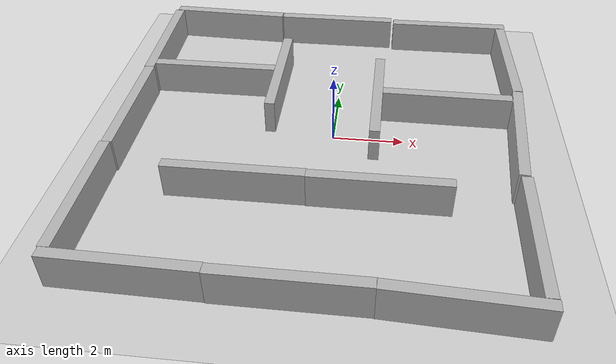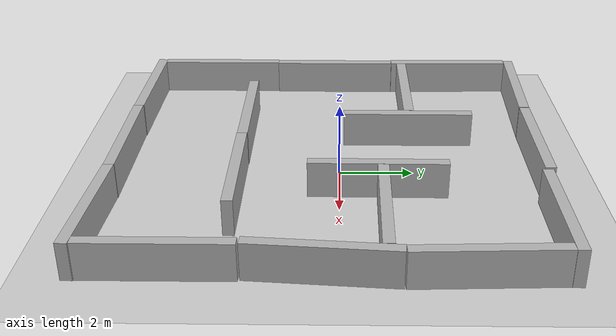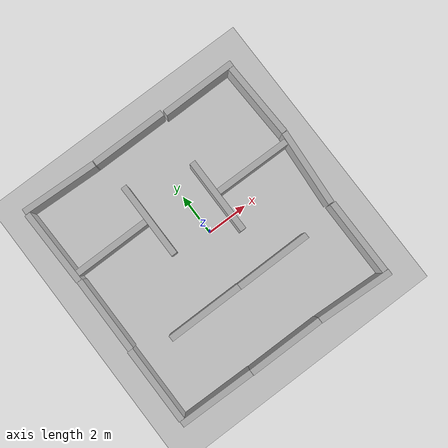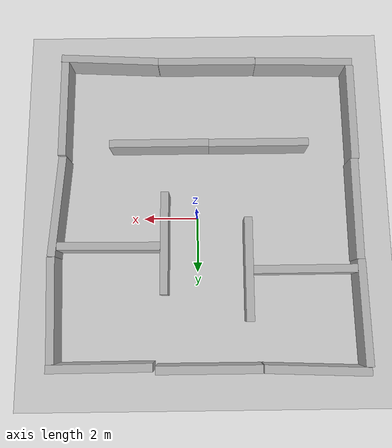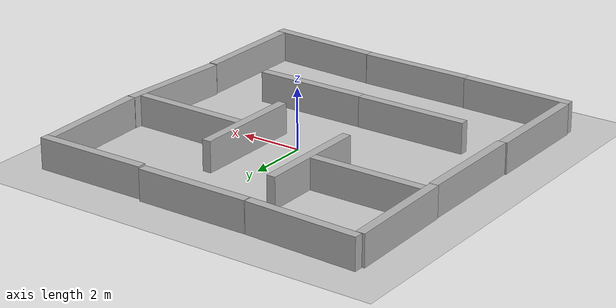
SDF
<sdf version="1.9">
 <world name="default">
  <plugin name="gz::sim::systems::Physics" filename="gz-sim-physics-system"/>
  <plugin name="gz::sim::systems::UserCommands" filename="gz-sim-user-commands-system"/>
  <plugin name="gz::sim::systems::SceneBroadcaster" filename="gz-sim-scene-broadcaster-system"/>
  <plugin name="gz::sim::systems::Sensors" filename="gz-sim-sensors-system"/>
  <scene>
   <ambient>0.8 0.8 0.8 1</ambient>
   <background>0.95 0.95 0.95 1</background>
   <shadows>false</shadows>
  </scene>
  <gravity>0 0 -9.8</gravity>
  <magnetic_field>6e-06 2.3e-05 -4.2e-05</magnetic_field>
  <atmosphere type="adiabatic"/>
  <physics type="ode">
   <max_step_size>0.001</max_step_size>
   <real_time_factor>1</real_time_factor>
   <real_time_update_rate>1000</real_time_update_rate>
  </physics>
  <scene><ambient>0.4 0.4 0.4 1</ambient><background>0.7 0.7 0.7 1</background><shadows>true</shadows></scene>
  <audio><device>default</device></audio>
  <spherical_coordinates>
   <surface_model>EARTH_WGS84</surface_model>
   <latitude_deg>0</latitude_deg>
   <longitude_deg>0</longitude_deg>
   <elevation>0</elevation>
   <heading_deg>0</heading_deg>
  </spherical_coordinates>
  <model name="ground_plane">
   <static>true</static>
   <link name="link">
    <collision name="collision">
     <geometry><plane><normal>0 0 1</normal><size>100 100</size></plane></geometry>
     <surface><friction><ode><mu>100</mu><mu2>50</mu2></ode></friction></surface>
    </collision>
    <visual name="visual">
     <cast_shadows>false</cast_shadows>
     <geometry><plane><normal>0 0 1</normal><size>100 100</size></plane></geometry>
     <material>
      <script><uri>file://media/materials/scripts/gazebo.material</uri><name>Gazebo/Grey</name></script>
     </material>
    </visual>
    <inertial>
     <mass>1</mass>
     <inertia><ixx>1</ixx><ixy>0</ixy><ixz>0</ixz><iyy>1</iyy><iyz>0</iyz><izz>1</izz></inertia>
    </inertial>
   </link>
  </model>
  <model name="boxes">
   <link name="link_0">
    <inertial>
     <mass>1.0809800000000001</mass>
     <inertia>
      <ixx>1.32921</ixx>
      <ixy>0</ixy>
      <ixz>0</ixz>
      <iyy>0.097733700000000007</iyy>
      <iyz>0</iyz>
      <izz>1.24678</izz>
     </inertia>
    </inertial>
    <pose>-3e-06 2e-06 0 0 -0 0</pose>
    <visual name="visual">
     <geometry><box><size>0.29145 3.70885 1</size></box></geometry>
     <material>
      <ambient>0.7 0.7 0.7 1</ambient>
      <diffuse>0.7 0.7 0.7 1</diffuse>
      <specular>0.05 0.05 0.05 1</specular>
     </material>
    </visual>
    <collision name="collision">
     <geometry><box><size>0.29145 3.70885 1</size></box></geometry>
     <surface>
      <friction>
       <ode><mu>1</mu><mu2>1</mu2><fdir1>0 0 0</fdir1><slip1>0</slip1><slip2>0</slip2></ode>
       <torsional>
        <coefficient>1</coefficient>
        <patch_radius>0</patch_radius>
        <surface_radius>0</surface_radius>
        <use_patch_radius>true</use_patch_radius>
        <ode><slip>0</slip></ode>
       </torsional>
      </friction>
      <bounce><restitution_coefficient>0</restitution_coefficient><threshold>1000000</threshold></bounce>
      <contact>
       <collide_without_contact>false</collide_without_contact>
       <collide_without_contact_bitmask>1</collide_without_contact_bitmask>
       <collide_bitmask>1</collide_bitmask>
       <ode>
        <soft_cfm>0</soft_cfm>
        <soft_erp>0.20000000000000001</soft_erp>
        <kp>10000000000000</kp>
        <kd>1</kd>
        <max_vel>0.01</max_vel>
        <min_depth>0</min_depth>
       </ode>
       <bullet>
        <split_impulse>true</split_impulse>
        <split_impulse_penetration_threshold>-0.01</split_impulse_penetration_threshold>
        <soft_cfm>0</soft_cfm>
        <soft_erp>0.20000000000000001</soft_erp>
        <kp>10000000000000</kp>
        <kd>1</kd>
       </bullet>
      </contact>
     </surface>
    </collision>
   </link>
   <static>false</static>
   <pose>-5.8693 -3.88223 0.5 0 0 -0.000817</pose>
  </model>
  <model name="boxes_clone">
   <link name="link_0">
    <inertial>
     <mass>1.0809800000000001</mass>
     <inertia>
      <ixx>1.32921</ixx>
      <ixy>0</ixy>
      <ixz>0</ixz>
      <iyy>0.097733700000000007</iyy>
      <iyz>0</iyz>
      <izz>1.24678</izz>
     </inertia>
    </inertial>
    <pose>-3e-06 2e-06 0 0 -0 0</pose>
    <visual name="visual">
     <geometry><box><size>0.29145 3.70885 1</size></box></geometry>
     <material>
      <ambient>0.7 0.7 0.7 1</ambient>
      <diffuse>0.7 0.7 0.7 1</diffuse>
      <specular>0.05 0.05 0.05 1</specular>
     </material>
    </visual>
    <collision name="collision">
     <geometry><box><size>0.29145 3.70885 1</size></box></geometry>
     <surface>
      <friction>
       <ode><mu>1</mu><mu2>1</mu2><fdir1>0 0 0</fdir1><slip1>0</slip1><slip2>0</slip2></ode>
       <torsional>
        <coefficient>1</coefficient>
        <patch_radius>0</patch_radius>
        <surface_radius>0</surface_radius>
        <use_patch_radius>true</use_patch_radius>
        <ode><slip>0</slip></ode>
       </torsional>
      </friction>
      <bounce><restitution_coefficient>0</restitution_coefficient><threshold>1000000</threshold></bounce>
      <contact>
       <collide_without_contact>false</collide_without_contact>
       <collide_without_contact_bitmask>1</collide_without_contact_bitmask>
       <collide_bitmask>1</collide_bitmask>
       <ode>
        <soft_cfm>0</soft_cfm>
        <soft_erp>0.20000000000000001</soft_erp>
        <kp>10000000000000</kp>
        <kd>1</kd>
        <max_vel>0.01</max_vel>
        <min_depth>0</min_depth>
       </ode>
       <bullet>
        <split_impulse>true</split_impulse>
        <split_impulse_penetration_threshold>-0.01</split_impulse_penetration_threshold>
        <soft_cfm>0</soft_cfm>
        <soft_erp>0.20000000000000001</soft_erp>
        <kp>10000000000000</kp>
        <kd>1</kd>
       </bullet>
      </contact>
     </surface>
    </collision>
   </link>
   <static>false</static>
   <pose>-5.82231 -0.173391 0.499995 -3e-06 -0 -0.000754</pose>
  </model>
  <model name="boxes_clone_clone">
   <link name="link_0">
    <inertial>
     <mass>1.0809800000000001</mass>
     <inertia>
      <ixx>1.32921</ixx>
      <ixy>0</ixy>
      <ixz>0</ixz>
      <iyy>0.097733700000000007</iyy>
      <iyz>0</iyz>
      <izz>1.24678</izz>
     </inertia>
    </inertial>
    <pose>-3e-06 2e-06 0 0 -0 0</pose>
    <visual name="visual">
     <geometry><box><size>0.29145 3.70885 1</size></box></geometry>
     <material>
      <ambient>0.7 0.7 0.7 1</ambient>
      <diffuse>0.7 0.7 0.7 1</diffuse>
      <specular>0.05 0.05 0.05 1</specular>
     </material>
    </visual>
    <collision name="collision">
     <geometry><box><size>0.29145 3.70885 1</size></box></geometry>
     <surface>
      <friction>
       <ode><mu>1</mu><mu2>1</mu2><fdir1>0 0 0</fdir1><slip1>0</slip1><slip2>0</slip2></ode>
       <torsional>
        <coefficient>1</coefficient>
        <patch_radius>0</patch_radius>
        <surface_radius>0</surface_radius>
        <use_patch_radius>true</use_patch_radius>
        <ode><slip>0</slip></ode>
       </torsional>
      </friction>
      <bounce><restitution_coefficient>0</restitution_coefficient><threshold>1000000</threshold></bounce>
      <contact>
       <collide_without_contact>false</collide_without_contact>
       <collide_without_contact_bitmask>1</collide_without_contact_bitmask>
       <collide_bitmask>1</collide_bitmask>
       <ode>
        <soft_cfm>0</soft_cfm>
        <soft_erp>0.20000000000000001</soft_erp>
        <kp>10000000000000</kp>
        <kd>1</kd>
        <max_vel>0.01</max_vel>
        <min_depth>0</min_depth>
       </ode>
       <bullet>
        <split_impulse>true</split_impulse>
        <split_impulse_penetration_threshold>-0.01</split_impulse_penetration_threshold>
        <soft_cfm>0</soft_cfm>
        <soft_erp>0.20000000000000001</soft_erp>
        <kp>10000000000000</kp>
        <kd>1</kd>
       </bullet>
      </contact>
     </surface>
    </collision>
   </link>
   <static>false</static>
   <pose>-5.87255 3.53939 0.499995 -3e-06 -0 0.016364</pose>
  </model>
  <model name="boxes_clone_0">
   <link name="link_0">
    <inertial>
     <mass>1.0809800000000001</mass>
     <inertia>
      <ixx>1.32921</ixx>
      <ixy>0</ixy>
      <ixz>0</ixz>
      <iyy>0.097733700000000007</iyy>
      <iyz>0</iyz>
      <izz>1.24678</izz>
     </inertia>
    </inertial>
    <pose>-3e-06 2e-06 0 0 -0 0</pose>
    <visual name="visual">
     <geometry><box><size>0.29145 3.70885 1</size></box></geometry>
     <material>
      <ambient>0.7 0.7 0.7 1</ambient>
      <diffuse>0.7 0.7 0.7 1</diffuse>
      <specular>0.05 0.05 0.05 1</specular>
     </material>
    </visual>
    <collision name="collision">
     <geometry><box><size>0.29145 3.70885 1</size></box></geometry>
     <surface>
      <friction>
       <ode><mu>1</mu><mu2>1</mu2><fdir1>0 0 0</fdir1><slip1>0</slip1><slip2>0</slip2></ode>
       <torsional>
        <coefficient>1</coefficient>
        <patch_radius>0</patch_radius>
        <surface_radius>0</surface_radius>
        <use_patch_radius>true</use_patch_radius>
        <ode><slip>0</slip></ode>
       </torsional>
      </friction>
      <bounce><restitution_coefficient>0</restitution_coefficient><threshold>1000000</threshold></bounce>
      <contact>
       <collide_without_contact>false</collide_without_contact>
       <collide_without_contact_bitmask>1</collide_without_contact_bitmask>
       <collide_bitmask>1</collide_bitmask>
       <ode>
        <soft_cfm>0</soft_cfm>
        <soft_erp>0.20000000000000001</soft_erp>
        <kp>10000000000000</kp>
        <kd>1</kd>
        <max_vel>0.01</max_vel>
        <min_depth>0</min_depth>
       </ode>
       <bullet>
        <split_impulse>true</split_impulse>
        <split_impulse_penetration_threshold>-0.01</split_impulse_penetration_threshold>
        <soft_cfm>0</soft_cfm>
        <soft_erp>0.20000000000000001</soft_erp>
        <kp>10000000000000</kp>
        <kd>1</kd>
       </bullet>
      </contact>
     </surface>
    </collision>
   </link>
   <static>false</static>
   <pose>4.9946 -4.13535 0.5 0 -0 -0.001346</pose>
  </model>
  <model name="boxes_clone_1">
   <link name="link_0">
    <inertial>
     <mass>1.0809800000000001</mass>
     <inertia>
      <ixx>1.32921</ixx>
      <ixy>0</ixy>
      <ixz>0</ixz>
      <iyy>0.097733700000000007</iyy>
      <iyz>0</iyz>
      <izz>1.24678</izz>
     </inertia>
    </inertial>
    <pose>-3e-06 2e-06 0 0 -0 0</pose>
    <visual name="visual">
     <geometry><box><size>0.29145 3.70885 1</size></box></geometry>
     <material>
      <ambient>0.7 0.7 0.7 1</ambient>
      <diffuse>0.7 0.7 0.7 1</diffuse>
      <specular>0.05 0.05 0.05 1</specular>
     </material>
    </visual>
    <collision name="collision">
     <geometry><box><size>0.29145 3.70885 1</size></box></geometry>
     <surface>
      <friction>
       <ode><mu>1</mu><mu2>1</mu2><fdir1>0 0 0</fdir1><slip1>0</slip1><slip2>0</slip2></ode>
       <torsional>
        <coefficient>1</coefficient>
        <patch_radius>0</patch_radius>
        <surface_radius>0</surface_radius>
        <use_patch_radius>true</use_patch_radius>
        <ode><slip>0</slip></ode>
       </torsional>
      </friction>
      <bounce><restitution_coefficient>0</restitution_coefficient><threshold>1000000</threshold></bounce>
      <contact>
       <collide_without_contact>false</collide_without_contact>
       <collide_without_contact_bitmask>1</collide_without_contact_bitmask>
       <collide_bitmask>1</collide_bitmask>
       <ode>
        <soft_cfm>0</soft_cfm>
        <soft_erp>0.20000000000000001</soft_erp>
        <kp>10000000000000</kp>
        <kd>1</kd>
        <max_vel>0.01</max_vel>
        <min_depth>0</min_depth>
       </ode>
       <bullet>
        <split_impulse>true</split_impulse>
        <split_impulse_penetration_threshold>-0.01</split_impulse_penetration_threshold>
        <soft_cfm>0</soft_cfm>
        <soft_erp>0.20000000000000001</soft_erp>
        <kp>10000000000000</kp>
        <kd>1</kd>
       </bullet>
      </contact>
     </surface>
    </collision>
   </link>
   <static>false</static>
   <pose>5.09165 -0.382169 0.5 0 -3e-06 -0.075842</pose>
  </model>
  <model name="boxes_clone_2">
   <link name="link_0">
    <inertial>
     <mass>1.0809800000000001</mass>
     <inertia>
      <ixx>1.32921</ixx>
      <ixy>0</ixy>
      <ixz>0</ixz>
      <iyy>0.097733700000000007</iyy>
      <iyz>0</iyz>
      <izz>1.24678</izz>
     </inertia>
    </inertial>
    <pose>-3e-06 2e-06 0 0 -0 0</pose>
    <visual name="visual">
     <geometry><box><size>0.29145 3.70885 1</size></box></geometry>
     <material>
      <ambient>0.7 0.7 0.7 1</ambient>
      <diffuse>0.7 0.7 0.7 1</diffuse>
      <specular>0.05 0.05 0.05 1</specular>
     </material>
    </visual>
    <collision name="collision">
     <geometry><box><size>0.29145 3.70885 1</size></box></geometry>
     <surface>
      <friction>
       <ode><mu>1</mu><mu2>1</mu2><fdir1>0 0 0</fdir1><slip1>0</slip1><slip2>0</slip2></ode>
       <torsional>
        <coefficient>1</coefficient>
        <patch_radius>0</patch_radius>
        <surface_radius>0</surface_radius>
        <use_patch_radius>true</use_patch_radius>
        <ode><slip>0</slip></ode>
       </torsional>
      </friction>
      <bounce><restitution_coefficient>0</restitution_coefficient><threshold>1000000</threshold></bounce>
      <contact>
       <collide_without_contact>false</collide_without_contact>
       <collide_without_contact_bitmask>1</collide_without_contact_bitmask>
       <collide_bitmask>1</collide_bitmask>
       <ode>
        <soft_cfm>0</soft_cfm>
        <soft_erp>0.20000000000000001</soft_erp>
        <kp>10000000000000</kp>
        <kd>1</kd>
        <max_vel>0.01</max_vel>
        <min_depth>0</min_depth>
       </ode>
       <bullet>
        <split_impulse>true</split_impulse>
        <split_impulse_penetration_threshold>-0.01</split_impulse_penetration_threshold>
        <soft_cfm>0</soft_cfm>
        <soft_erp>0.20000000000000001</soft_erp>
        <kp>10000000000000</kp>
        <kd>1</kd>
       </bullet>
      </contact>
     </surface>
    </collision>
   </link>
   <static>false</static>
   <pose>5.17715 3.33561 0.500001 -0 -8e-06 0.035442</pose>
  </model>
  <model name="boxes_clone_3">
   <link name="link_0">
    <inertial>
     <mass>1.0809800000000001</mass>
     <inertia>
      <ixx>1.32921</ixx>
      <ixy>0</ixy>
      <ixz>0</ixz>
      <iyy>0.097733700000000007</iyy>
      <iyz>0</iyz>
      <izz>1.24678</izz>
     </inertia>
    </inertial>
    <pose>-3e-06 2e-06 0 0 -0 0</pose>
    <visual name="visual">
     <geometry><box><size>0.29145 3.70885 1</size></box></geometry>
     <material>
      <ambient>0.7 0.7 0.7 1</ambient>
      <diffuse>0.7 0.7 0.7 1</diffuse>
      <specular>0.05 0.05 0.05 1</specular>
     </material>
    </visual>
    <collision name="collision">
     <geometry><box><size>0.29145 3.70885 1</size></box></geometry>
     <surface>
      <friction>
       <ode><mu>1</mu><mu2>1</mu2><fdir1>0 0 0</fdir1><slip1>0</slip1><slip2>0</slip2></ode>
       <torsional>
        <coefficient>1</coefficient>
        <patch_radius>0</patch_radius>
        <surface_radius>0</surface_radius>
        <use_patch_radius>true</use_patch_radius>
        <ode><slip>0</slip></ode>
       </torsional>
      </friction>
      <bounce><restitution_coefficient>0</restitution_coefficient><threshold>1000000</threshold></bounce>
      <contact>
       <collide_without_contact>false</collide_without_contact>
       <collide_without_contact_bitmask>1</collide_without_contact_bitmask>
       <collide_bitmask>1</collide_bitmask>
       <ode>
        <soft_cfm>0</soft_cfm>
        <soft_erp>0.20000000000000001</soft_erp>
        <kp>10000000000000</kp>
        <kd>1</kd>
        <max_vel>0.01</max_vel>
        <min_depth>0</min_depth>
       </ode>
       <bullet>
        <split_impulse>true</split_impulse>
        <split_impulse_penetration_threshold>-0.01</split_impulse_penetration_threshold>
        <soft_cfm>0</soft_cfm>
        <soft_erp>0.20000000000000001</soft_erp>
        <kp>10000000000000</kp>
        <kd>1</kd>
       </bullet>
      </contact>
     </surface>
    </collision>
   </link>
   <static>false</static>
   <pose>-4.12795 -5.91134 0.500001 -0 4e-06 -1.58646</pose>
  </model>
  <model name="boxes_clone_3_clone">
   <link name="link_0">
    <inertial>
     <mass>1.0809800000000001</mass>
     <inertia>
      <ixx>1.32921</ixx>
      <ixy>0</ixy>
      <ixz>0</ixz>
      <iyy>0.097733700000000007</iyy>
      <iyz>0</iyz>
      <izz>1.24678</izz>
     </inertia>
    </inertial>
    <pose>-3e-06 2e-06 0 0 -0 0</pose>
    <visual name="visual">
     <geometry><box><size>0.29145 3.70885 1</size></box></geometry>
     <material>
      <ambient>0.7 0.7 0.7 1</ambient>
      <diffuse>0.7 0.7 0.7 1</diffuse>
      <specular>0.05 0.05 0.05 1</specular>
     </material>
    </visual>
    <collision name="collision">
     <geometry><box><size>0.29145 3.70885 1</size></box></geometry>
     <surface>
      <friction>
       <ode><mu>1</mu><mu2>1</mu2><fdir1>0 0 0</fdir1><slip1>0</slip1><slip2>0</slip2></ode>
       <torsional>
        <coefficient>1</coefficient>
        <patch_radius>0</patch_radius>
        <surface_radius>0</surface_radius>
        <use_patch_radius>true</use_patch_radius>
        <ode><slip>0</slip></ode>
       </torsional>
      </friction>
      <bounce><restitution_coefficient>0</restitution_coefficient><threshold>1000000</threshold></bounce>
      <contact>
       <collide_without_contact>false</collide_without_contact>
       <collide_without_contact_bitmask>1</collide_without_contact_bitmask>
       <collide_bitmask>1</collide_bitmask>
       <ode>
        <soft_cfm>0</soft_cfm>
        <soft_erp>0.20000000000000001</soft_erp>
        <kp>10000000000000</kp>
        <kd>1</kd>
        <max_vel>0.01</max_vel>
        <min_depth>0</min_depth>
       </ode>
       <bullet>
        <split_impulse>true</split_impulse>
        <split_impulse_penetration_threshold>-0.01</split_impulse_penetration_threshold>
        <soft_cfm>0</soft_cfm>
        <soft_erp>0.20000000000000001</soft_erp>
        <kp>10000000000000</kp>
        <kd>1</kd>
       </bullet>
      </contact>
     </surface>
    </collision>
   </link>
   <static>false</static>
   <pose>-0.417646 -5.96041 0.499998 -1e-06 2e-06 -1.57333</pose>
  </model>
  <model name="boxes_clone_3_clone_clone">
   <link name="link_0">
    <inertial>
     <mass>1.0809800000000001</mass>
     <inertia>
      <ixx>1.32921</ixx>
      <ixy>0</ixy>
      <ixz>0</ixz>
      <iyy>0.097733700000000007</iyy>
      <iyz>0</iyz>
      <izz>1.24678</izz>
     </inertia>
    </inertial>
    <pose>-3e-06 2e-06 0 0 -0 0</pose>
    <visual name="visual">
     <geometry><box><size>0.29145 3.70885 1</size></box></geometry>
     <material>
      <ambient>0.7 0.7 0.7 1</ambient>
      <diffuse>0.7 0.7 0.7 1</diffuse>
      <specular>0.05 0.05 0.05 1</specular>
     </material>
    </visual>
    <collision name="collision">
     <geometry><box><size>0.29145 3.70885 1</size></box></geometry>
     <surface>
      <friction>
       <ode><mu>1</mu><mu2>1</mu2><fdir1>0 0 0</fdir1><slip1>0</slip1><slip2>0</slip2></ode>
       <torsional>
        <coefficient>1</coefficient>
        <patch_radius>0</patch_radius>
        <surface_radius>0</surface_radius>
        <use_patch_radius>true</use_patch_radius>
        <ode><slip>0</slip></ode>
       </torsional>
      </friction>
      <bounce><restitution_coefficient>0</restitution_coefficient><threshold>1000000</threshold></bounce>
      <contact>
       <collide_without_contact>false</collide_without_contact>
       <collide_without_contact_bitmask>1</collide_without_contact_bitmask>
       <collide_bitmask>1</collide_bitmask>
       <ode>
        <soft_cfm>0</soft_cfm>
        <soft_erp>0.20000000000000001</soft_erp>
        <kp>10000000000000</kp>
        <kd>1</kd>
        <max_vel>0.01</max_vel>
        <min_depth>0</min_depth>
       </ode>
       <bullet>
        <split_impulse>true</split_impulse>
        <split_impulse_penetration_threshold>-0.01</split_impulse_penetration_threshold>
        <soft_cfm>0</soft_cfm>
        <soft_erp>0.20000000000000001</soft_erp>
        <kp>10000000000000</kp>
        <kd>1</kd>
       </bullet>
      </contact>
     </surface>
    </collision>
   </link>
   <static>false</static>
   <pose>3.29649 -6.06215 0.499998 -1e-06 -2e-06 -1.61892</pose>
  </model>
  <model name="boxes_clone_3_clone_0">
   <link name="link_0">
    <inertial>
     <mass>1.0809800000000001</mass>
     <inertia>
      <ixx>1.32921</ixx>
      <ixy>0</ixy>
      <ixz>0</ixz>
      <iyy>0.097733700000000007</iyy>
      <iyz>0</iyz>
      <izz>1.24678</izz>
     </inertia>
    </inertial>
    <pose>-3e-06 2e-06 0 0 -0 0</pose>
    <visual name="visual">
     <geometry><box><size>0.29145 3.70885 1</size></box></geometry>
     <material>
      <ambient>0.7 0.7 0.7 1</ambient>
      <diffuse>0.7 0.7 0.7 1</diffuse>
      <specular>0.05 0.05 0.05 1</specular>
     </material>
    </visual>
    <collision name="collision">
     <geometry><box><size>0.29145 3.70885 1</size></box></geometry>
     <surface>
      <friction>
       <ode><mu>1</mu><mu2>1</mu2><fdir1>0 0 0</fdir1><slip1>0</slip1><slip2>0</slip2></ode>
       <torsional>
        <coefficient>1</coefficient>
        <patch_radius>0</patch_radius>
        <surface_radius>0</surface_radius>
        <use_patch_radius>true</use_patch_radius>
        <ode><slip>0</slip></ode>
       </torsional>
      </friction>
      <bounce><restitution_coefficient>0</restitution_coefficient><threshold>1000000</threshold></bounce>
      <contact>
       <collide_without_contact>false</collide_without_contact>
       <collide_without_contact_bitmask>1</collide_without_contact_bitmask>
       <collide_bitmask>1</collide_bitmask>
       <ode>
        <soft_cfm>0</soft_cfm>
        <soft_erp>0.20000000000000001</soft_erp>
        <kp>10000000000000</kp>
        <kd>1</kd>
        <max_vel>0.01</max_vel>
        <min_depth>0</min_depth>
       </ode>
       <bullet>
        <split_impulse>true</split_impulse>
        <split_impulse_penetration_threshold>-0.01</split_impulse_penetration_threshold>
        <soft_cfm>0</soft_cfm>
        <soft_erp>0.20000000000000001</soft_erp>
        <kp>10000000000000</kp>
        <kd>1</kd>
       </bullet>
      </contact>
     </surface>
    </collision>
   </link>
   <static>false</static>
   <pose>-4.11342 5.4868 0.499998 1e-06 2e-06 -1.60723</pose>
  </model>
  <model name="boxes_clone_3_clone_0_clone">
   <link name="link_0">
    <inertial>
     <mass>1.0809800000000001</mass>
     <inertia>
      <ixx>1.32921</ixx>
      <ixy>0</ixy>
      <ixz>0</ixz>
      <iyy>0.097733700000000007</iyy>
      <iyz>0</iyz>
      <izz>1.24678</izz>
     </inertia>
    </inertial>
    <pose>-3e-06 2e-06 0 0 -0 0</pose>
    <visual name="visual">
     <geometry><box><size>0.29145 3.70885 1</size></box></geometry>
     <material>
      <ambient>0.7 0.7 0.7 1</ambient>
      <diffuse>0.7 0.7 0.7 1</diffuse>
      <specular>0.05 0.05 0.05 1</specular>
     </material>
    </visual>
    <collision name="collision">
     <geometry><box><size>0.29145 3.70885 1</size></box></geometry>
     <surface>
      <friction>
       <ode><mu>1</mu><mu2>1</mu2><fdir1>0 0 0</fdir1><slip1>0</slip1><slip2>0</slip2></ode>
       <torsional>
        <coefficient>1</coefficient>
        <patch_radius>0</patch_radius>
        <surface_radius>0</surface_radius>
        <use_patch_radius>true</use_patch_radius>
        <ode><slip>0</slip></ode>
       </torsional>
      </friction>
      <bounce><restitution_coefficient>0</restitution_coefficient><threshold>1000000</threshold></bounce>
      <contact>
       <collide_without_contact>false</collide_without_contact>
       <collide_without_contact_bitmask>1</collide_without_contact_bitmask>
       <collide_bitmask>1</collide_bitmask>
       <ode>
        <soft_cfm>0</soft_cfm>
        <soft_erp>0.20000000000000001</soft_erp>
        <kp>10000000000000</kp>
        <kd>1</kd>
        <max_vel>0.01</max_vel>
        <min_depth>0</min_depth>
       </ode>
       <bullet>
        <split_impulse>true</split_impulse>
        <split_impulse_penetration_threshold>-0.01</split_impulse_penetration_threshold>
        <soft_cfm>0</soft_cfm>
        <soft_erp>0.20000000000000001</soft_erp>
        <kp>10000000000000</kp>
        <kd>1</kd>
       </bullet>
      </contact>
     </surface>
    </collision>
   </link>
   <static>false</static>
   <pose>-0.373499 5.41963 0.5 -0 2e-06 -1.57066</pose>
  </model>
  <model name="boxes_clone_3_clone_0_clone_0">
   <link name="link_0">
    <inertial>
     <mass>1.0809800000000001</mass>
     <inertia>
      <ixx>1.32921</ixx>
      <ixy>0</ixy>
      <ixz>0</ixz>
      <iyy>0.097733700000000007</iyy>
      <iyz>0</iyz>
      <izz>1.24678</izz>
     </inertia>
    </inertial>
    <pose>-3e-06 2e-06 0 0 -0 0</pose>
    <visual name="visual">
     <geometry><box><size>0.29145 3.70885 1</size></box></geometry>
     <material>
      <ambient>0.7 0.7 0.7 1</ambient>
      <diffuse>0.7 0.7 0.7 1</diffuse>
      <specular>0.05 0.05 0.05 1</specular>
     </material>
    </visual>
    <collision name="collision">
     <geometry><box><size>0.29145 3.70885 1</size></box></geometry>
     <surface>
      <friction>
       <ode><mu>1</mu><mu2>1</mu2><fdir1>0 0 0</fdir1><slip1>0</slip1><slip2>0</slip2></ode>
       <torsional>
        <coefficient>1</coefficient>
        <patch_radius>0</patch_radius>
        <surface_radius>0</surface_radius>
        <use_patch_radius>true</use_patch_radius>
        <ode><slip>0</slip></ode>
       </torsional>
      </friction>
      <bounce><restitution_coefficient>0</restitution_coefficient><threshold>1000000</threshold></bounce>
      <contact>
       <collide_without_contact>false</collide_without_contact>
       <collide_without_contact_bitmask>1</collide_without_contact_bitmask>
       <collide_bitmask>1</collide_bitmask>
       <ode>
        <soft_cfm>0</soft_cfm>
        <soft_erp>0.20000000000000001</soft_erp>
        <kp>10000000000000</kp>
        <kd>1</kd>
        <max_vel>0.01</max_vel>
        <min_depth>0</min_depth>
       </ode>
       <bullet>
        <split_impulse>true</split_impulse>
        <split_impulse_penetration_threshold>-0.01</split_impulse_penetration_threshold>
        <soft_cfm>0</soft_cfm>
        <soft_erp>0.20000000000000001</soft_erp>
        <kp>10000000000000</kp>
        <kd>1</kd>
       </bullet>
      </contact>
     </surface>
    </collision>
   </link>
   <static>false</static>
   <pose>3.41599 5.3311 0.5 0 -0 -1.56594</pose>
  </model>
  <model name="boxes_clone_3_clone_0_clone_1">
   <link name="link_0">
    <inertial>
     <mass>1.0809800000000001</mass>
     <inertia>
      <ixx>1.32921</ixx>
      <ixy>0</ixy>
      <ixz>0</ixz>
      <iyy>0.097733700000000007</iyy>
      <iyz>0</iyz>
      <izz>1.24678</izz>
     </inertia>
    </inertial>
    <pose>-3e-06 2e-06 0 0 -0 0</pose>
    <visual name="visual">
     <geometry><box><size>0.29145 3.70885 1</size></box></geometry>
     <material>
      <ambient>0.7 0.7 0.7 1</ambient>
      <diffuse>0.7 0.7 0.7 1</diffuse>
      <specular>0.05 0.05 0.05 1</specular>
     </material>
    </visual>
    <collision name="collision">
     <geometry><box><size>0.29145 3.70885 1</size></box></geometry>
     <surface>
      <friction>
       <ode><mu>1</mu><mu2>1</mu2><fdir1>0 0 0</fdir1><slip1>0</slip1><slip2>0</slip2></ode>
       <torsional>
        <coefficient>1</coefficient>
        <patch_radius>0</patch_radius>
        <surface_radius>0</surface_radius>
        <use_patch_radius>true</use_patch_radius>
        <ode><slip>0</slip></ode>
       </torsional>
      </friction>
      <bounce><restitution_coefficient>0</restitution_coefficient><threshold>1000000</threshold></bounce>
      <contact>
       <collide_without_contact>false</collide_without_contact>
       <collide_without_contact_bitmask>1</collide_without_contact_bitmask>
       <collide_bitmask>1</collide_bitmask>
       <ode>
        <soft_cfm>0</soft_cfm>
        <soft_erp>0.20000000000000001</soft_erp>
        <kp>10000000000000</kp>
        <kd>1</kd>
        <max_vel>0.01</max_vel>
        <min_depth>0</min_depth>
       </ode>
       <bullet>
        <split_impulse>true</split_impulse>
        <split_impulse_penetration_threshold>-0.01</split_impulse_penetration_threshold>
        <soft_cfm>0</soft_cfm>
        <soft_erp>0.20000000000000001</soft_erp>
        <kp>10000000000000</kp>
        <kd>1</kd>
       </bullet>
      </contact>
     </surface>
    </collision>
   </link>
   <static>false</static>
   <pose>-2.31447 -2.69855 0.499998 1e-06 2e-06 -1.57056</pose>
  </model>
  <model name="boxes_clone_3_clone_0_clone_1_clone">
   <link name="link_0">
    <inertial>
     <mass>1.0809800000000001</mass>
     <inertia>
      <ixx>1.32921</ixx>
      <ixy>0</ixy>
      <ixz>0</ixz>
      <iyy>0.097733700000000007</iyy>
      <iyz>0</iyz>
      <izz>1.24678</izz>
     </inertia>
    </inertial>
    <pose>-3e-06 2e-06 0 0 -0 0</pose>
    <visual name="visual">
     <geometry><box><size>0.29145 3.70885 1</size></box></geometry>
     <material>
      <ambient>0.7 0.7 0.7 1</ambient>
      <diffuse>0.7 0.7 0.7 1</diffuse>
      <specular>0.05 0.05 0.05 1</specular>
     </material>
    </visual>
    <collision name="collision">
     <geometry><box><size>0.29145 3.70885 1</size></box></geometry>
     <surface>
      <friction>
       <ode><mu>1</mu><mu2>1</mu2><fdir1>0 0 0</fdir1><slip1>0</slip1><slip2>0</slip2></ode>
       <torsional>
        <coefficient>1</coefficient>
        <patch_radius>0</patch_radius>
        <surface_radius>0</surface_radius>
        <use_patch_radius>true</use_patch_radius>
        <ode><slip>0</slip></ode>
       </torsional>
      </friction>
      <bounce><restitution_coefficient>0</restitution_coefficient><threshold>1000000</threshold></bounce>
      <contact>
       <collide_without_contact>false</collide_without_contact>
       <collide_without_contact_bitmask>1</collide_without_contact_bitmask>
       <collide_bitmask>1</collide_bitmask>
       <ode>
        <soft_cfm>0</soft_cfm>
        <soft_erp>0.20000000000000001</soft_erp>
        <kp>10000000000000</kp>
        <kd>1</kd>
        <max_vel>0.01</max_vel>
        <min_depth>0</min_depth>
       </ode>
       <bullet>
        <split_impulse>true</split_impulse>
        <split_impulse_penetration_threshold>-0.01</split_impulse_penetration_threshold>
        <soft_cfm>0</soft_cfm>
        <soft_erp>0.20000000000000001</soft_erp>
        <kp>10000000000000</kp>
        <kd>1</kd>
       </bullet>
      </contact>
     </surface>
    </collision>
   </link>
   <static>false</static>
   <pose>1.3947 -2.70895 0.5 0 -0 -1.56907</pose>
  </model>
  <model name="boxes_clone_3_clone_0_clone_1_clone_0">
   <link name="link_0">
    <inertial>
     <mass>1.0809800000000001</mass>
     <inertia>
      <ixx>1.32921</ixx>
      <ixy>0</ixy>
      <ixz>0</ixz>
      <iyy>0.097733700000000007</iyy>
      <iyz>0</iyz>
      <izz>1.24678</izz>
     </inertia>
    </inertial>
    <pose>-3e-06 2e-06 0 0 -0 0</pose>
    <visual name="visual">
     <geometry><box><size>0.29145 3.70885 1</size></box></geometry>
     <material>
      <ambient>0.7 0.7 0.7 1</ambient>
      <diffuse>0.7 0.7 0.7 1</diffuse>
      <specular>0.05 0.05 0.05 1</specular>
     </material>
    </visual>
    <collision name="collision">
     <geometry><box><size>0.29145 3.70885 1</size></box></geometry>
     <surface>
      <friction>
       <ode><mu>1</mu><mu2>1</mu2><fdir1>0 0 0</fdir1><slip1>0</slip1><slip2>0</slip2></ode>
       <torsional>
        <coefficient>1</coefficient>
        <patch_radius>0</patch_radius>
        <surface_radius>0</surface_radius>
        <use_patch_radius>true</use_patch_radius>
        <ode><slip>0</slip></ode>
       </torsional>
      </friction>
      <bounce><restitution_coefficient>0</restitution_coefficient><threshold>1000000</threshold></bounce>
      <contact>
       <collide_without_contact>false</collide_without_contact>
       <collide_without_contact_bitmask>1</collide_without_contact_bitmask>
       <collide_bitmask>1</collide_bitmask>
       <ode>
        <soft_cfm>0</soft_cfm>
        <soft_erp>0.20000000000000001</soft_erp>
        <kp>10000000000000</kp>
        <kd>1</kd>
        <max_vel>0.01</max_vel>
        <min_depth>0</min_depth>
       </ode>
       <bullet>
        <split_impulse>true</split_impulse>
        <split_impulse_penetration_threshold>-0.01</split_impulse_penetration_threshold>
        <soft_cfm>0</soft_cfm>
        <soft_erp>0.20000000000000001</soft_erp>
        <kp>10000000000000</kp>
        <kd>1</kd>
       </bullet>
      </contact>
     </surface>
    </collision>
   </link>
   <static>false</static>
   <pose>-3.84509 2.00914 0.499995 -3e-06 -1e-06 -1.56947</pose>
  </model>
  <model name="boxes_clone_clone_0">
   <link name="link_0">
    <inertial>
     <mass>1.0809800000000001</mass>
     <inertia>
      <ixx>1.32921</ixx>
      <ixy>0</ixy>
      <ixz>0</ixz>
      <iyy>0.097733700000000007</iyy>
      <iyz>0</iyz>
      <izz>1.24678</izz>
     </inertia>
    </inertial>
    <pose>-3e-06 2e-06 0 0 -0 0</pose>
    <visual name="visual">
     <geometry><box><size>0.29145 3.70885 1</size></box></geometry>
     <material>
      <ambient>0.7 0.7 0.7 1</ambient>
      <diffuse>0.7 0.7 0.7 1</diffuse>
      <specular>0.05 0.05 0.05 1</specular>
     </material>
    </visual>
    <collision name="collision">
     <geometry><box><size>0.29145 3.70885 1</size></box></geometry>
     <surface>
      <friction>
       <ode><mu>1</mu><mu2>1</mu2><fdir1>0 0 0</fdir1><slip1>0</slip1><slip2>0</slip2></ode>
       <torsional>
        <coefficient>1</coefficient>
        <patch_radius>0</patch_radius>
        <surface_radius>0</surface_radius>
        <use_patch_radius>true</use_patch_radius>
        <ode><slip>0</slip></ode>
       </torsional>
      </friction>
      <bounce><restitution_coefficient>0</restitution_coefficient><threshold>1000000</threshold></bounce>
      <contact>
       <collide_without_contact>false</collide_without_contact>
       <collide_without_contact_bitmask>1</collide_without_contact_bitmask>
       <collide_bitmask>1</collide_bitmask>
       <ode>
        <soft_cfm>0</soft_cfm>
        <soft_erp>0.20000000000000001</soft_erp>
        <kp>10000000000000</kp>
        <kd>1</kd>
        <max_vel>0.01</max_vel>
        <min_depth>0</min_depth>
       </ode>
       <bullet>
        <split_impulse>true</split_impulse>
        <split_impulse_penetration_threshold>-0.01</split_impulse_penetration_threshold>
        <soft_cfm>0</soft_cfm>
        <soft_erp>0.20000000000000001</soft_erp>
        <kp>10000000000000</kp>
        <kd>1</kd>
       </bullet>
      </contact>
     </surface>
    </collision>
   </link>
   <static>false</static>
   <pose>-1.8442 1.97068 0.5 0 -0 -0.003104</pose>
  </model>
  <model name="boxes_clone_3_clone_0_clone_1_clone_0_clone">
   <link name="link_0">
    <inertial>
     <mass>1.0809800000000001</mass>
     <inertia>
      <ixx>1.32921</ixx>
      <ixy>0</ixy>
      <ixz>0</ixz>
      <iyy>0.097733700000000007</iyy>
      <iyz>0</iyz>
      <izz>1.24678</izz>
     </inertia>
    </inertial>
    <pose>-3e-06 2e-06 0 0 -0 0</pose>
    <visual name="visual">
     <geometry><box><size>0.29145 3.70885 1</size></box></geometry>
     <material>
      <ambient>0.7 0.7 0.7 1</ambient>
      <diffuse>0.7 0.7 0.7 1</diffuse>
      <specular>0.05 0.05 0.05 1</specular>
     </material>
    </visual>
    <collision name="collision">
     <geometry><box><size>0.29145 3.70885 1</size></box></geometry>
     <surface>
      <friction>
       <ode><mu>1</mu><mu2>1</mu2><fdir1>0 0 0</fdir1><slip1>0</slip1><slip2>0</slip2></ode>
       <torsional>
        <coefficient>1</coefficient>
        <patch_radius>0</patch_radius>
        <surface_radius>0</surface_radius>
        <use_patch_radius>true</use_patch_radius>
        <ode><slip>0</slip></ode>
       </torsional>
      </friction>
      <bounce><restitution_coefficient>0</restitution_coefficient><threshold>1000000</threshold></bounce>
      <contact>
       <collide_without_contact>false</collide_without_contact>
       <collide_without_contact_bitmask>1</collide_without_contact_bitmask>
       <collide_bitmask>1</collide_bitmask>
       <ode>
        <soft_cfm>0</soft_cfm>
        <soft_erp>0.20000000000000001</soft_erp>
        <kp>10000000000000</kp>
        <kd>1</kd>
        <max_vel>0.01</max_vel>
        <min_depth>0</min_depth>
       </ode>
       <bullet>
        <split_impulse>true</split_impulse>
        <split_impulse_penetration_threshold>-0.01</split_impulse_penetration_threshold>
        <soft_cfm>0</soft_cfm>
        <soft_erp>0.20000000000000001</soft_erp>
        <kp>10000000000000</kp>
        <kd>1</kd>
       </bullet>
      </contact>
     </surface>
    </collision>
   </link>
   <static>false</static>
   <pose>3.19402 1.11688 0.5 -0 -0 -1.58007</pose>
  </model>
  <model name="boxes_clone_clone_0_clone">
   <link name="link_0">
    <inertial>
     <mass>1.0809800000000001</mass>
     <inertia>
      <ixx>1.32921</ixx>
      <ixy>0</ixy>
      <ixz>0</ixz>
      <iyy>0.097733700000000007</iyy>
      <iyz>0</iyz>
      <izz>1.24678</izz>
     </inertia>
    </inertial>
    <pose>-3e-06 2e-06 0 0 -0 0</pose>
    <visual name="visual">
     <geometry><box><size>0.29145 3.70885 1</size></box></geometry>
     <material>
      <ambient>0.7 0.7 0.7 1</ambient>
      <diffuse>0.7 0.7 0.7 1</diffuse>
      <specular>0.05 0.05 0.05 1</specular>
     </material>
    </visual>
    <collision name="collision">
     <geometry><box><size>0.29145 3.70885 1</size></box></geometry>
     <surface>
      <friction>
       <ode><mu>1</mu><mu2>1</mu2><fdir1>0 0 0</fdir1><slip1>0</slip1><slip2>0</slip2></ode>
       <torsional>
        <coefficient>1</coefficient>
        <patch_radius>0</patch_radius>
        <surface_radius>0</surface_radius>
        <use_patch_radius>true</use_patch_radius>
        <ode><slip>0</slip></ode>
       </torsional>
      </friction>
      <bounce><restitution_coefficient>0</restitution_coefficient><threshold>1000000</threshold></bounce>
      <contact>
       <collide_without_contact>false</collide_without_contact>
       <collide_without_contact_bitmask>1</collide_without_contact_bitmask>
       <collide_bitmask>1</collide_bitmask>
       <ode>
        <soft_cfm>0</soft_cfm>
        <soft_erp>0.20000000000000001</soft_erp>
        <kp>10000000000000</kp>
        <kd>1</kd>
        <max_vel>0.01</max_vel>
        <min_depth>0</min_depth>
       </ode>
       <bullet>
        <split_impulse>true</split_impulse>
        <split_impulse_penetration_threshold>-0.01</split_impulse_penetration_threshold>
        <soft_cfm>0</soft_cfm>
        <soft_erp>0.20000000000000001</soft_erp>
        <kp>10000000000000</kp>
        <kd>1</kd>
       </bullet>
      </contact>
     </surface>
    </collision>
   </link>
   <static>false</static>
   <pose>1.19218 1.00677 0.499998 1e-06 2e-06 -0.006739</pose>
  </model>
  <light name="sun" type="directional">
   <pose>0 0 10 0 -0 0</pose>
   <cast_shadows>false</cast_shadows>
   <intensity>1</intensity>
   <direction>-0.5 0.1 -0.9</direction>
   <diffuse>1 1 1 1</diffuse>
   <specular>0.2 0.2 0.2 1</specular>
   <attenuation>
    <range>1000</range>
    <linear>0.001</linear>
    <constant>0.90000000000000002</constant>
    <quadratic>0.0001</quadratic>
   </attenuation>
   <spot><inner_angle>0</inner_angle><outer_angle>0</outer_angle><falloff>0</falloff></spot>
  </light>
 </world>
</sdf>
